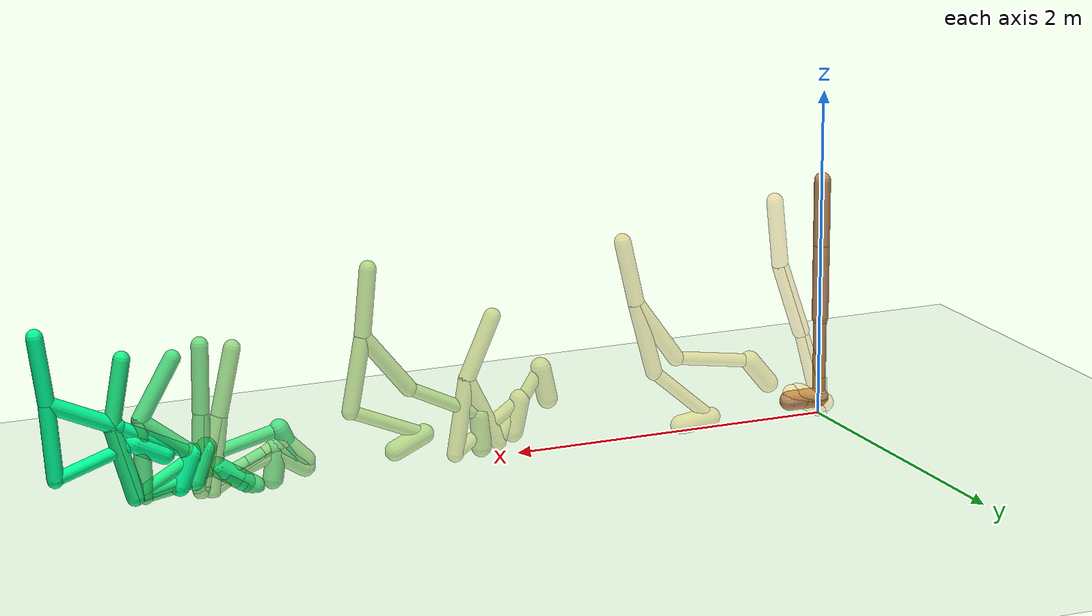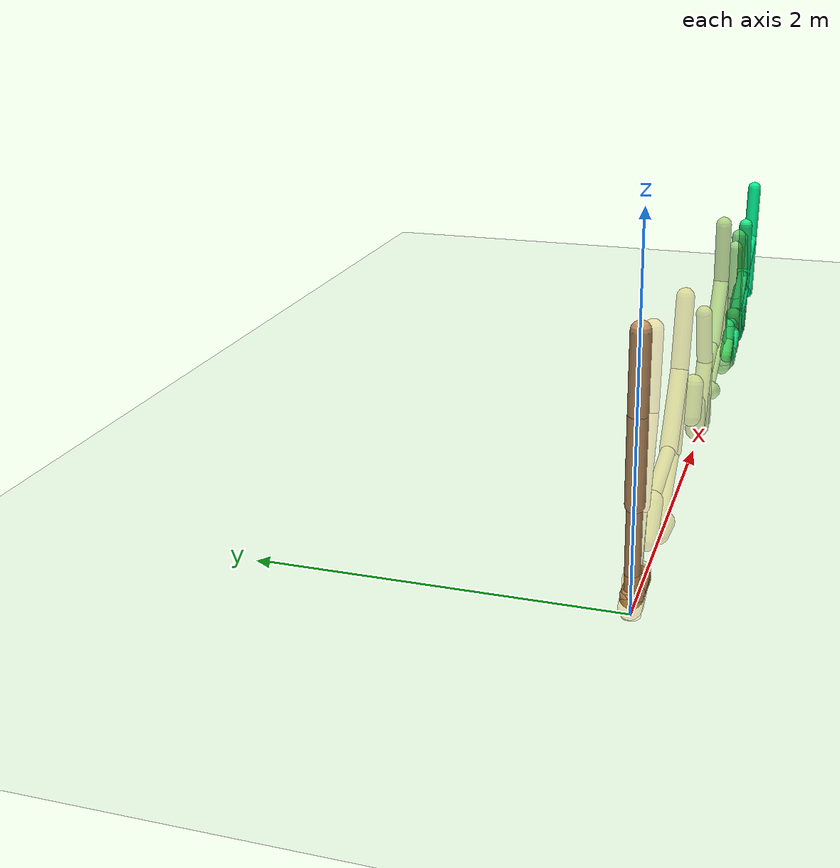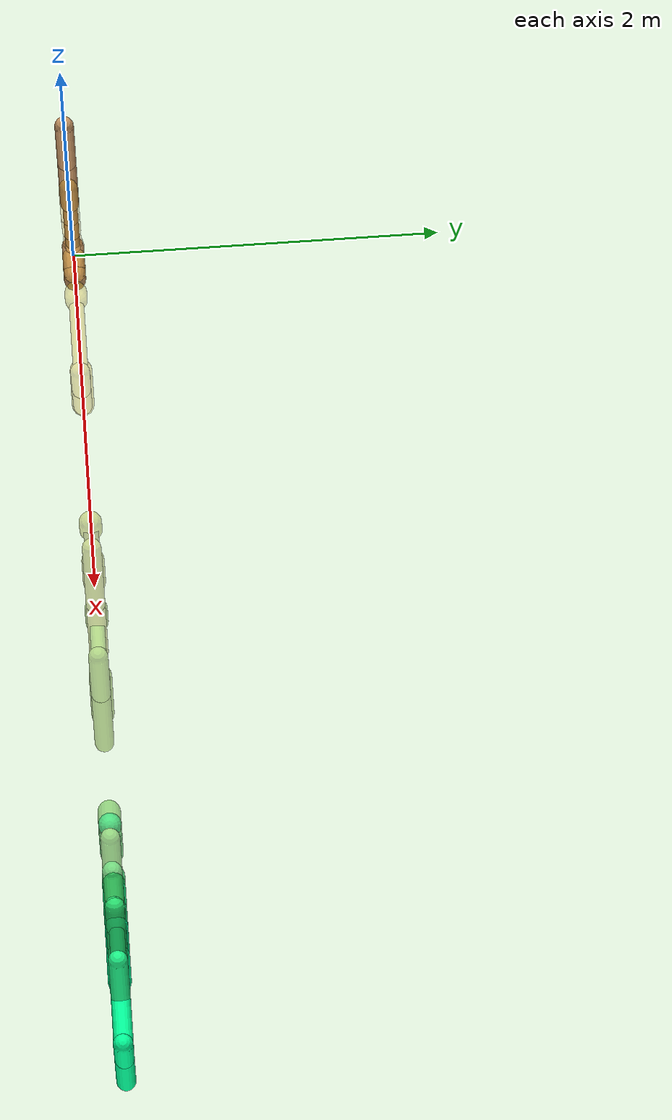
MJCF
<!--
Walker2D model for `Walker2d-v5`, based on openai/gym/Walker2d
modified by @kallinteris-Andreas
  - To not require `coordinate="global"`
  - keep feet friction to 0.9/1.9
-->
<mujoco model="walker2d">
  <compiler angle="degree" inertiafromgeom="true"/>
  <default>
    <joint armature="0.01" damping=".1" limited="true"/>
    <geom conaffinity="0" condim="3" contype="1" density="1000" friction=".7 .1 .1" rgba="0.8 0.6 .4 1"/>
  </default>
  <option integrator="RK4" timestep="0.01"/>
  <asset>
    <texture type="skybox" builtin="gradient" rgb1="0.5 .5 .5" rgb2="0.9 0.9 0.9" width="512" height="3072"/>
    <texture type="2d" name="groundplane" builtin="checker" mark="edge" rgb1="0.9 0.9 0.9" rgb2="0.5 0.5 0.5"
      markrgb="0.8 0.8 0.8" width="300" height="300"/>
    <material name="groundplane" texture="groundplane" texuniform="true" texrepeat="1.5 1.5" reflectance="0.2"/>
  </asset>
  <worldbody>
    <light cutoff="100" diffuse="1 1 1" dir="-0 0 -1.3" directional="true" exponent="1" pos="0 0 1.3" specular=".1 .1 .1"/>
    <geom conaffinity="1" condim="3" name="groundplane" pos="0 0 0" rgba="0.8 0.9 0.8 1" size="40 40 40" type="plane" material="groundplane"/>
    <body name="torso" pos="0 0 1.25">
      <camera name="track" mode="trackcom" pos="0 -3 -0.25" xyaxes="1 0 0 0 0 1"/>
      <joint armature="0" axis="1 0 0" damping="0" limited="false" name="rootx" pos="0 0 -1.25" stiffness="0" type="slide"/>
      <joint armature="0" axis="0 0 1" damping="0" limited="false" name="rootz" pos="0 0 -1.25" ref="1.25" stiffness="0" type="slide"/>
      <joint armature="0" axis="0 1 0" damping="0" limited="false" name="rooty" pos="0 0 0" stiffness="0" type="hinge"/>
      <geom friction="0.9" name="torso_geom" size="0.050000000000000003 0.19999999999999996" type="capsule"/>
      <body name="thigh" pos="0 0 -0.19999999999999996">
        <joint axis="0 -1 0" name="thigh_joint" pos="0 0 0" range="-150 0" type="hinge"/>
        <geom friction="0.9" pos="0 0 -0.22500000000000009" name="thigh_geom" size="0.050000000000000003 0.22500000000000003" type="capsule"/>
        <body name="leg" pos="0 0 -0.70000000000000007">
          <joint axis="0 -1 0" name="leg_joint" pos="0 0 0.25" range="-150 0" type="hinge"/>
          <geom friction="0.9" name="leg_geom" size="0.040000000000000001 0.25" type="capsule"/>
          <body name="foot" pos="0.20000000000000001 0 -0.34999999999999998">
            <joint axis="0 -1 0" name="foot_joint" pos="-0.20000000000000001 0 0.10000000000000001" range="-45 45" type="hinge"/>
            <geom friction="0.9" pos="-0.10000000000000001 0 0.10000000000000001" quat="0.70710678118654757 0 -0.70710678118654746 0" name="foot_geom" size="0.059999999999999998 0.10000000000000001" type="capsule"/>
          </body>
        </body>
      </body>
      <!-- copied and then replace thigh->thigh_left, leg->leg_left, foot->foot_right -->
      <body name="thigh_left" pos="0 0 -0.19999999999999996">
        <joint axis="0 -1 0" name="thigh_left_joint" pos="0 0 0" range="-150 0" type="hinge"/>
        <geom friction="0.9" name="thigh_left_geom" size="0.050000000000000003 0.22500000000000003" pos="0 0 -0.22500000000000009" type="capsule"/>
        <body name="leg_left" pos="0 0 -0.70000000000000007">
          <joint axis="0 -1 0" name="leg_left_joint" pos="0 0 0.25" range="-150 0" type="hinge"/>
          <geom friction="0.9" name="leg_left_geom" size="0.040000000000000001 0.25" type="capsule"/>
          <body name="foot_left" pos="0.20000000000000001 0 -0.34999999999999998">
            <joint axis="0 -1 0" name="foot_left_joint" pos="-0.20000000000000001 0 0.10000000000000001" range="-45 45" type="hinge"/>
            <geom friction="1.9" name="foot_left_geom" size="0.059999999999999998 0.10000000000000001" pos="-0.10000000000000001 0 0.10000000000000001" type="capsule" quat="0.70710678118654757 0 -0.70710678118654746 0"/>
          </body>
        </body>
      </body>
    </body>

        <geom type="capsule" size="0.05 0.19999999999999996 0.0" pos="0.0 0.0 0.0" quat="1.0 0.0 0.0 0.0" rgba="1.0 0.6 0.0 0.2" contype="0" conaffinity="0"/>
        <geom type="capsule" size="0.05 0.22500000000000003 0.0" pos="0.0 0.0 -0.42500000000000004" quat="1.0 0.0 0.0 0.0" rgba="1.0 0.6 0.0 0.2" contype="0" conaffinity="0"/>
        <geom type="capsule" size="0.04 0.25 0.0" pos="0.0 0.0 -0.9" quat="1.0 0.0 0.0 0.0" rgba="1.0 0.6 0.0 0.2" contype="0" conaffinity="0"/>
        <geom type="capsule" size="0.06 0.1 0.0" pos="0.1 0.0 -1.15" quat="0.7071067811865476 0.0 -0.7071067811865475 0.0" rgba="1.0 0.6 0.0 0.2" contype="0" conaffinity="0"/>
        <geom type="capsule" size="0.05 0.22500000000000003 0.0" pos="0.0 0.0 -0.42500000000000004" quat="1.0 0.0 0.0 0.0" rgba="1.0 0.6 0.0 0.2" contype="0" conaffinity="0"/>
        <geom type="capsule" size="0.04 0.25 0.0" pos="0.0 0.0 -0.9" quat="1.0 0.0 0.0 0.0" rgba="1.0 0.6 0.0 0.2" contype="0" conaffinity="0"/>
        <geom type="capsule" size="0.06 0.1 0.0" pos="0.1 0.0 -1.15" quat="0.7071067811865476 0.0 -0.7071067811865475 0.0" rgba="1.0 0.6 0.0 0.2" contype="0" conaffinity="0"/>
        <geom type="capsule" size="0.05 0.19999999999999996 0.0" pos="0.2992917966573948 0.0 1.1560660813069012" quat="0.9985705338637998 0.0 0.053449872768473 0.0" rgba="0.889 0.644 0.067 0.2888888888888889" contype="0" conaffinity="0"/>
        <geom type="capsule" size="0.05 0.22500000000000003 0.0" pos="0.2034008187199905 0.0 0.7449152871541502" quat="0.9857806266128353 0.0 0.1680373654721051 0.0" rgba="0.889 0.644 0.067 0.2888888888888889" contype="0" conaffinity="0"/>
        <geom type="capsule" size="0.04 0.25 0.0" pos="0.04685427412982528 0.0 0.29645402681106947" quat="0.9860706979022787 0.0 0.16632672286350458 0.0" rgba="0.889 0.644 0.067 0.2888888888888889" contype="0" conaffinity="0"/>
        <geom type="capsule" size="0.06 0.1 0.0" pos="0.05543710631829535 0.0 0.10264021825804096" quat="0.5368710176675819 0.0 -0.8436643351408041 0.0" rgba="0.889 0.644 0.067 0.2888888888888889" contype="0" conaffinity="0"/>
        <geom type="capsule" size="0.05 0.22500000000000003 0.0" pos="0.20542575430881221 0.0 0.744215093471963" quat="0.9865695260677831 0.0 0.16334188144621617 0.0" rgba="0.889 0.644 0.067 0.2888888888888889" contype="0" conaffinity="0"/>
        <geom type="capsule" size="0.04 0.25 0.0" pos="0.0684505920377348 0.0 0.2896740444408532" quat="0.9915112764225983 0.0 0.1300207242205243 0.0" rgba="0.889 0.644 0.067 0.2888888888888889" contype="0" conaffinity="0"/>
        <geom type="capsule" size="0.06 0.1 0.0" pos="0.09276723280721588 0.0 0.09415904395833458" quat="0.5194597907727487 0.0 -0.8544948951107505 0.0" rgba="0.889 0.644 0.067 0.2888888888888889" contype="0" conaffinity="0"/>
        <geom type="capsule" size="0.05 0.19999999999999996 0.0" pos="1.279740550656498 0.0 1.0203553984786533" quat="0.9931987294847635 0.0 0.11643145515646311 0.0" rgba="0.778 0.689 0.133 0.37777777777777777" contype="0" conaffinity="0"/>
        <geom type="capsule" size="0.05 0.22500000000000003 0.0" pos="1.1012374274817927 0.0 0.6437459003112849" quat="0.9510602407223787 0.0 0.30900553153154237 0.0" rgba="0.778 0.689 0.133 0.37777777777777777" contype="0" conaffinity="0"/>
        <geom type="capsule" size="0.04 0.25 0.0" pos="0.7218663975384986 0.0 0.42390041148301694" quat="0.7587008332155156 0.0 0.6514392110382076 0.0" rgba="0.778 0.689 0.133 0.37777777777777777" contype="0" conaffinity="0"/>
        <geom type="capsule" size="0.06 0.1 0.0" pos="0.41108288224981276 0.0 0.3089673355556032" quat="0.94106216257603 0.0 0.3382336561723653 0.0" rgba="0.778 0.689 0.133 0.37777777777777777" contype="0" conaffinity="0"/>
        <geom type="capsule" size="0.05 0.22500000000000003 0.0" pos="1.1739748721995884 0.0 0.6087904057546288" quat="0.9910572426835282 0.0 0.13343740751574137 0.0" rgba="0.778 0.689 0.133 0.37777777777777777" contype="0" conaffinity="0"/>
        <geom type="capsule" size="0.04 0.25 0.0" pos="0.9247678630942543 0.0 0.22896866635214616" quat="0.9086630103382856 0.0 0.417530278713969 0.0" rgba="0.778 0.689 0.133 0.37777777777777777" contype="0" conaffinity="0"/>
        <geom type="capsule" size="0.06 0.1 0.0" pos="0.834169010629118 0.0 0.05273572251435418" quat="0.7529897431548266 0.0 -0.6580322535435692 0.0" rgba="0.778 0.689 0.133 0.37777777777777777" contype="0" conaffinity="0"/>
        <geom type="capsule" size="0.05 0.19999999999999996 0.0" pos="2.24992826190423 0.0 0.6755869821845965" quat="0.977746787071236 0.0 -0.2097885134412157 0.0" rgba="0.667 0.733 0.2 0.4666666666666667" contype="0" conaffinity="0"/>
        <geom type="capsule" size="0.05 0.22500000000000003 0.0" pos="2.2309145238934476 0.0 0.29216529921748197" quat="0.9729978544179433 0.0 0.23081415749056425 0.0" rgba="0.667 0.733 0.2 0.4666666666666667" contype="0" conaffinity="0"/>
        <geom type="capsule" size="0.04 0.25 0.0" pos="1.9929951848616025 0.0 0.3003519431192883" quat="0.28561227208342804 0.0 0.9583452561761558 0.0" rgba="0.667 0.733 0.2 0.4666666666666667" contype="0" conaffinity="0"/>
        <geom type="capsule" size="0.06 0.1 0.0" pos="1.8336589076875798 0.0 0.4121239642695619" quat="0.9935813853615545 0.0 0.11311954147278902 0.0" rgba="0.667 0.733 0.2 0.4666666666666667" contype="0" conaffinity="0"/>
        <geom type="capsule" size="0.05 0.22500000000000003 0.0" pos="2.368228026820492 0.0 0.2711310937575475" quat="0.9967284000678297 0.0 -0.08082386094603794 0.0" rgba="0.667 0.733 0.2 0.4666666666666667" contype="0" conaffinity="0"/>
        <geom type="capsule" size="0.04 0.25 0.0" pos="2.1982221261302333 0.0 0.19034273422967027" quat="0.46632174075862765 0.0 0.884615189840104 0.0" rgba="0.667 0.733 0.2 0.4666666666666667" contype="0" conaffinity="0"/>
        <geom type="capsule" size="0.06 0.1 0.0" pos="2.0134896613176583 0.0 0.23395889377088433" quat="0.9941223705025141 0.0 -0.10826223933792532 0.0" rgba="0.667 0.733 0.2 0.4666666666666667" contype="0" conaffinity="0"/>
        <geom type="capsule" size="0.05 0.19999999999999996 0.0" pos="2.9675358642878953 0.0 1.031136767597409" quat="0.9989403791058733 0.0 -0.04602302675633186 0.0" rgba="0.556 0.778 0.267 0.5555555555555556" contype="0" conaffinity="0"/>
        <geom type="capsule" size="0.05 0.22500000000000003 0.0" pos="3.0260503382471744 0.0 0.6105906936391411" quat="0.9959845174555157 0.0 -0.08952564430878572 0.0" rgba="0.556 0.778 0.267 0.5555555555555556" contype="0" conaffinity="0"/>
        <geom type="capsule" size="0.04 0.25 0.0" pos="2.8352902860211233 0.0 0.29332141656510946" quat="0.8317162443033539 0.0 0.5552009446695164 0.0" rgba="0.556 0.778 0.267 0.5555555555555556" contype="0" conaffinity="0"/>
        <geom type="capsule" size="0.06 0.1 0.0" pos="2.695833725052129 0.0 0.1569377699738208" quat="0.8381756709433009 0.0 -0.5454003526206661 0.0" rgba="0.556 0.778 0.267 0.5555555555555556" contype="0" conaffinity="0"/>
        <geom type="capsule" size="0.05 0.22500000000000003 0.0" pos="2.84208281843053 0.0 0.6589688039062366" quat="0.9404670367995043 0.0 0.3398849109530458 0.0" rgba="0.556 0.778 0.267 0.5555555555555556" contype="0" conaffinity="0"/>
        <geom type="capsule" size="0.04 0.25 0.0" pos="2.4726038178902954 0.0 0.3783047080868394" quat="0.8457527824742868 0.0 0.5335749534385977 0.0" rgba="0.556 0.778 0.267 0.5555555555555556" contype="0" conaffinity="0"/>
        <geom type="capsule" size="0.06 0.1 0.0" pos="2.2422337103546357 0.0 0.17076793339806706" quat="0.9997196861052433 0.0 0.023675920544595164 0.0" rgba="0.556 0.778 0.267 0.5555555555555556" contype="0" conaffinity="0"/>
        <geom type="capsule" size="0.05 0.19999999999999996 0.0" pos="3.8319113265330773 0.0 0.662882287580803" quat="0.9942758148673988 0.0 -0.10684382981609188 0.0" rgba="0.444 0.822 0.333 0.6444444444444445" contype="0" conaffinity="0"/>
        <geom type="capsule" size="0.05 0.22500000000000003 0.0" pos="3.9320985043228216 0.0 0.24997124377545815" quat="0.9916062002778375 0.0 -0.1292947932847616 0.0" rgba="0.444 0.822 0.333 0.6444444444444445" contype="0" conaffinity="0"/>
        <geom type="capsule" size="0.04 0.25 0.0" pos="3.754596369370526 0.0 0.11724444386996646" quat="0.5748904495853778 0.0 0.8182303899119869 0.0" rgba="0.444 0.822 0.333 0.6444444444444445" contype="0" conaffinity="0"/>
        <geom type="capsule" size="0.06 0.1 0.0" pos="3.434538942886896 0.0 0.14909304564533596" quat="0.8743622925092082 0.0 0.48527371805821296 0.0" rgba="0.444 0.822 0.333 0.6444444444444445" contype="0" conaffinity="0"/>
        <geom type="capsule" size="0.05 0.22500000000000003 0.0" pos="3.8982384408086155 0.0 0.24371446836873714" quat="0.9985924102343857 0.0 -0.05303959108326762 0.0" rgba="0.444 0.822 0.333 0.6444444444444445" contype="0" conaffinity="0"/>
        <geom type="capsule" size="0.04 0.25 0.0" pos="3.7073845709334963 0.0 0.1480781207072274" quat="0.49376570731782465 0.0 0.869594978295602 0.0" rgba="0.444 0.822 0.333 0.6444444444444445" contype="0" conaffinity="0"/>
        <geom type="capsule" size="0.06 0.1 0.0" pos="3.4210518225898516 0.0 0.20641163889058772" quat="0.9213148076393427 0.0 0.3888174703179901 0.0" rgba="0.444 0.822 0.333 0.6444444444444445" contype="0" conaffinity="0"/>
        <geom type="capsule" size="0.05 0.19999999999999996 0.0" pos="3.984815786672968 0.0 0.697660744654514" quat="0.9999996390490326 0.0 0.0008496480475505809 0.0" rgba="0.333 0.867 0.4 0.7333333333333334" contype="0" conaffinity="0"/>
        <geom type="capsule" size="0.05 0.22500000000000003 0.0" pos="3.9896126352214276 0.0 0.2727196760916618" quat="0.9999348393476826 0.0 -0.011415649728532444 0.0" rgba="0.333 0.867 0.4 0.7333333333333334" contype="0" conaffinity="0"/>
        <geom type="capsule" size="0.04 0.25 0.0" pos="3.7633141413028306 0.0 0.14231797963751555" quat="0.5576026167990468 0.0 0.8301080181150258 0.0" rgba="0.333 0.867 0.4 0.7333333333333334" contype="0" conaffinity="0"/>
        <geom type="capsule" size="0.06 0.1 0.0" pos="3.4462160133040687 0.0 0.18526439449033255" quat="0.8706125602603338 0.0 0.49196927741165564 0.0" rgba="0.333 0.867 0.4 0.7333333333333334" contype="0" conaffinity="0"/>
        <geom type="capsule" size="0.05 0.22500000000000003 0.0" pos="3.982474238210203 0.0 0.27266993750324114" quat="0.9999901065199425 0.0 0.004448242600638116 0.0" rgba="0.333 0.867 0.4 0.7333333333333334" contype="0" conaffinity="0"/>
        <geom type="capsule" size="0.04 0.25 0.0" pos="3.7508274386962563 0.0 0.14648736038051552" quat="0.5498935919079819 0.0 0.8352347200509193 0.0" rgba="0.333 0.867 0.4 0.7333333333333334" contype="0" conaffinity="0"/>
        <geom type="capsule" size="0.06 0.1 0.0" pos="3.535622317816266 0.0 0.14634393775399734" quat="0.9973764119322935 0.0 -0.07238986753036719 0.0" rgba="0.333 0.867 0.4 0.7333333333333334" contype="0" conaffinity="0"/>
        <geom type="capsule" size="0.05 0.19999999999999996 0.0" pos="4.253809027840637 0.0 0.6685105439632263" quat="0.9650035629149434 0.0 -0.2622367700408638 0.0" rgba="0.222 0.911 0.467 0.8222222222222222" contype="0" conaffinity="0"/>
        <geom type="capsule" size="0.05 0.22500000000000003 0.0" pos="4.341655316653319 0.0 0.27141582750541193" quat="0.9995576420290464 0.0 0.029740885348840007 0.0" rgba="0.222 0.911 0.467 0.8222222222222222" contype="0" conaffinity="0"/>
        <geom type="capsule" size="0.04 0.25 0.0" pos="4.081308694509783 0.0 0.0856241942302319" quat="0.6499071739760687 0.0 0.7600135954142138 0.0" rgba="0.222 0.911 0.467 0.8222222222222222" contype="0" conaffinity="0"/>
        <geom type="capsule" size="0.06 0.1 0.0" pos="3.7489281717537892 0.0 0.07242590853999793" quat="0.8718045030207576 0.0 0.4898539665172981 0.0" rgba="0.222 0.911 0.467 0.8222222222222222" contype="0" conaffinity="0"/>
        <geom type="capsule" size="0.05 0.22500000000000003 0.0" pos="4.175139386182487 0.0 0.36087578832153433" quat="0.8946035808188735 0.0 0.44686064179568247 0.0" rgba="0.222 0.911 0.467 0.8222222222222222" contype="0" conaffinity="0"/>
        <geom type="capsule" size="0.04 0.25 0.0" pos="3.7519192734834523 0.0 0.2831107392950557" quat="0.6206819539187534 0.0 0.7840624414417505 0.0" rgba="0.222 0.911 0.467 0.8222222222222222" contype="0" conaffinity="0"/>
        <geom type="capsule" size="0.06 0.1 0.0" pos="3.467017273987467 0.0 0.24953993664564794" quat="0.9771073602455538 0.0 0.2127468132639484 0.0" rgba="0.222 0.911 0.467 0.8222222222222222" contype="0" conaffinity="0"/>
        <geom type="capsule" size="0.05 0.19999999999999996 0.0" pos="4.488342063137413 0.0 0.6718448918239538" quat="0.9964242290480184 0.0 -0.08449115791644685 0.0" rgba="0.111 0.956 0.533 0.9111111111111112" contype="0" conaffinity="0"/>
        <geom type="capsule" size="0.05 0.22500000000000003 0.0" pos="4.449733591700568 0.0 0.26162761106467247" quat="0.9866585394549356 0.0 0.1628033369456945 0.0" rgba="0.111 0.956 0.533 0.9111111111111112" contype="0" conaffinity="0"/>
        <geom type="capsule" size="0.04 0.25 0.0" pos="4.134088083370626 0.0 0.10578435023245294" quat="0.6209194436744812 0.0 0.7838743805400027 0.0" rgba="0.111 0.956 0.533 0.9111111111111112" contype="0" conaffinity="0"/>
        <geom type="capsule" size="0.06 0.1 0.0" pos="3.806528140987977 0.0 0.10906381047732046" quat="0.8773541530893295 0.0 0.4798434015977562 0.0" rgba="0.111 0.956 0.533 0.9111111111111112" contype="0" conaffinity="0"/>
        <geom type="capsule" size="0.05 0.22500000000000003 0.0" pos="4.4567348380771925 0.0 0.2593793528324596" quat="0.9891871424984578 0.0 0.14665877783390896 0.0" rgba="0.111 0.956 0.533 0.9111111111111112" contype="0" conaffinity="0"/>
        <geom type="capsule" size="0.04 0.25 0.0" pos="4.173420569889218 0.0 0.16637877687812377" quat="0.5053306534466654 0.0 0.8629257967445212 0.0" rgba="0.111 0.956 0.533 0.9111111111111112" contype="0" conaffinity="0"/>
        <geom type="capsule" size="0.06 0.1 0.0" pos="3.989038237105292 0.0 0.19453057245264527" quat="0.9853138326671903 0.0 -0.1707531878317131 0.0" rgba="0.111 0.956 0.533 0.9111111111111112" contype="0" conaffinity="0"/>
        <geom type="capsule" size="0.05 0.19999999999999996 0.0" pos="4.934013071149342 0.0 0.8585149119074583" quat="0.9971461892281285 0.0 0.07549488265982901 0.0" rgba="0.0 1.0 0.6 1.0" contype="0" conaffinity="0"/>
        <geom type="capsule" size="0.05 0.22500000000000003 0.0" pos="4.883823294228276 0.0 0.43669232936818636" quat="0.9990021393174742 0.0 0.04466235147313832 0.0" rgba="0.0 1.0 0.6 1.0" contype="0" conaffinity="0"/>
        <geom type="capsule" size="0.04 0.25 0.0" pos="4.626083252676125 0.0 0.29015770357957693" quat="0.5872516535970063 0.0 0.8094044077885802 0.0" rgba="0.0 1.0 0.6 1.0" contype="0" conaffinity="0"/>
        <geom type="capsule" size="0.06 0.1 0.0" pos="4.298488671147264 0.0 0.323997454551049" quat="0.8477263612225316 0.0 0.5304338002884111 0.0" rgba="0.0 1.0 0.6 1.0" contype="0" conaffinity="0"/>
        <geom type="capsule" size="0.05 0.22500000000000003 0.0" pos="4.697621835009464 0.0 0.5709404685113284" quat="0.8364664226763792 0.0 0.5480181782888055 0.0" rgba="0.0 1.0 0.6 1.0" contype="0" conaffinity="0"/>
        <geom type="capsule" size="0.04 0.25 0.0" pos="4.266393206277846 0.0 0.3720088647216876" quat="0.8474401093533188 0.0 0.5308910067605546 0.0" rgba="0.0 1.0 0.6 1.0" contype="0" conaffinity="0"/>
        <geom type="capsule" size="0.06 0.1 0.0" pos="4.0790904507177865 0.0 0.170288374891657" quat="0.981435480201445 0.0 -0.1917925916237619 0.0" rgba="0.0 1.0 0.6 1.0" contype="0" conaffinity="0"/>
    </worldbody>
  <actuator>
    <motor ctrllimited="true" ctrlrange="-1.0 1.0" gear="100" joint="thigh_joint"/>
    <motor ctrllimited="true" ctrlrange="-1.0 1.0" gear="100" joint="leg_joint"/>
    <motor ctrllimited="true" ctrlrange="-1.0 1.0" gear="100" joint="foot_joint"/>
    <motor ctrllimited="true" ctrlrange="-1.0 1.0" gear="100" joint="thigh_left_joint"/>
    <motor ctrllimited="true" ctrlrange="-1.0 1.0" gear="100" joint="leg_left_joint"/>
    <motor ctrllimited="true" ctrlrange="-1.0 1.0" gear="100" joint="foot_left_joint"/>
  </actuator>
</mujoco>
